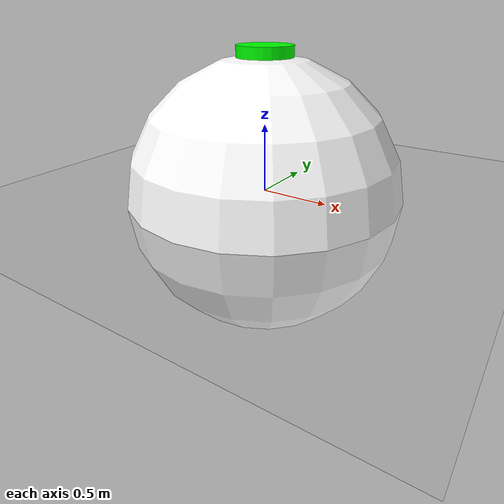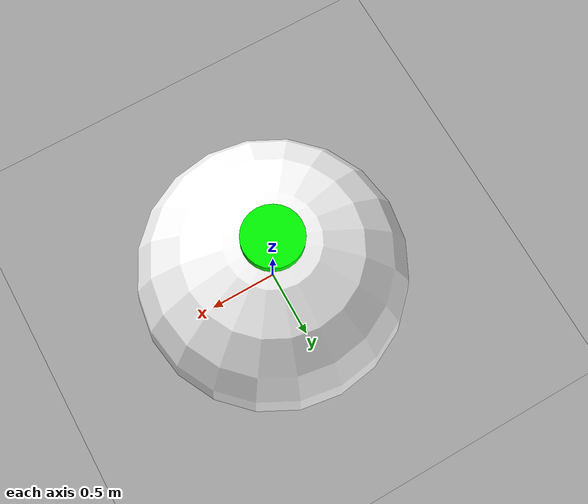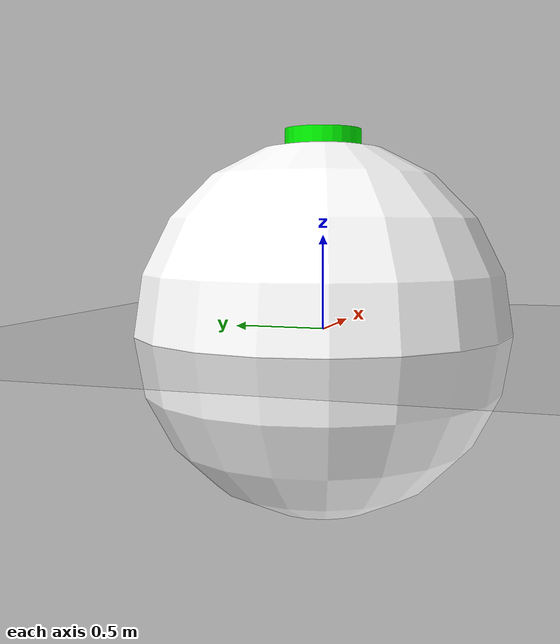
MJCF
<mujoco model="rotation_kinetic_energy_test">
    <option timestep="0.005" gravity="0 0 -9.81" />
    <worldbody>

        <body name="object_1" pos="0 0 1">
            <geom type="cylinder" size="0.2 0.05" density="0.1" rgba="0 1 0 1" />
            <joint name="object_1_joint" type="free" />
        </body>

        <body name="object_2" pos="0 0 0">
            <geom type="plane" size="30 30 0.1" rgba="0.7 0.7 0.7 1" friction="1 1 1" />
        </body>
    <body name="disk" pos="0 0 0"><geom type="sphere" size="1.0" rgba="1 1 1 1" /></body></worldbody>
</mujoco>
